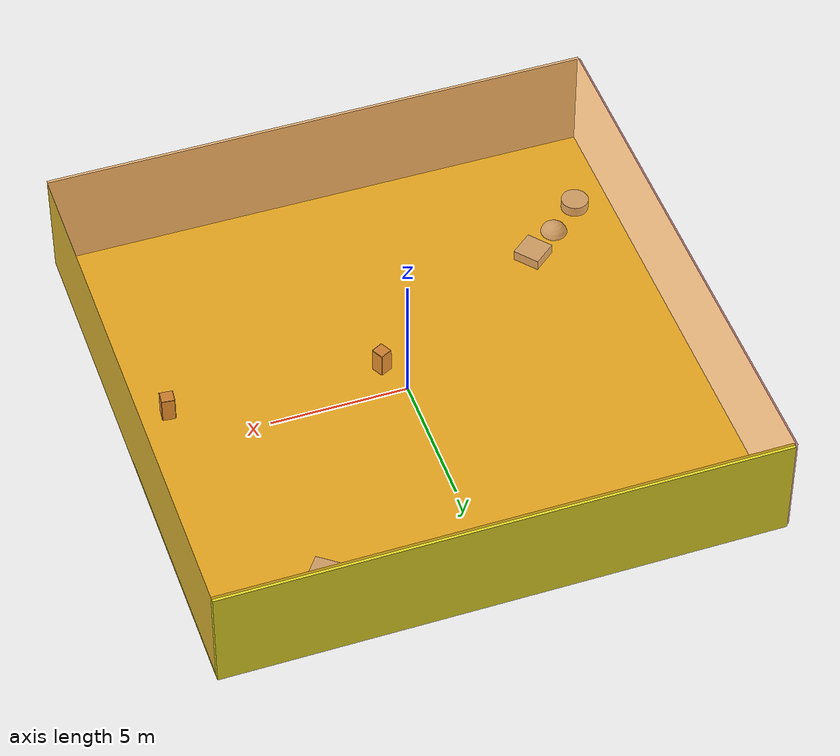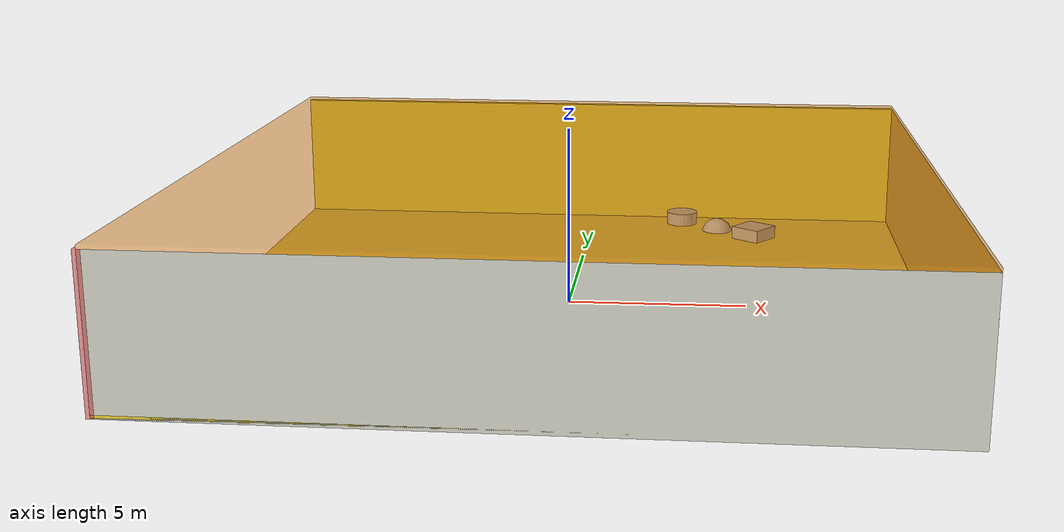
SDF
<sdf version="1.4">
 <world name="default">
  <physics type="ode">
   <max_step_size>0.001</max_step_size>
   <real_time_factor>1</real_time_factor>
   <real_time_update_rate>1000</real_time_update_rate>
   <gravity>0 0 -9.8</gravity>
  </physics>
  <scene><ambient>0.4 0.4 0.4 1</ambient><background>0.7 0.7 0.7 1</background><shadows>1</shadows></scene>
  <model name="Surrounding">
   <static>1</static>
   <link name="Ceiling">
    <collision name="Ceiling_Collision"><geometry><box><size>20 20 0.1</size></box></geometry></collision>
    <visual name="Ceiling_Visual">
     <geometry><box><size>20 20 0.1</size></box></geometry>
     <material>
      <script>
       <uri>file://media/materials/scripts/gazebo.material</uri>
       <name>Gazebo/OrangeTransparent</name>
      </script>
     </material>
    </visual>
    <pose>0 0 4.05 0 0 0</pose>
   </link>
   <link name="Wall_South">
    <collision name="Wall_South_Collision">
     <geometry><box><size>20 0 4</size></box></geometry>
     <pose>0 0 2 0 -0 0</pose>
    </collision>
    <visual name="Wall_South_Visual">
     <pose>0 0 2 0 -0 0</pose>
     <geometry><box><size>20 0 4</size></box></geometry>
     <material>
      <script><uri>file://media/materials/scripts/gazebo.material</uri><name>Gazebo/PaintedWall</name></script>
     </material>
    </visual>
    <velocity_decay><linear>0</linear><angular>0</angular></velocity_decay>
    <pose>0 -10 0 0 -0 0</pose>
   </link>
   <link name="Wall_East">
    <collision name="Wall_21_Collision">
     <geometry><box><size>20 0 4</size></box></geometry>
     <pose>0 0 2 0 -0 0</pose>
    </collision>
    <visual name="Wall_21_Visual">
     <pose>0 0 2 0 -0 0</pose>
     <geometry><box><size>20 0 4</size></box></geometry>
     <material>
      <script><uri>file://media/materials/scripts/gazebo.material</uri><name>Gazebo/Gold</name></script>
     </material>
    </visual>
    <velocity_decay><linear>0</linear><angular>0</angular></velocity_decay>
    <pose>10 0 0 0 -0 1.5708</pose>
   </link>
   <link name="Wall_North">
    <collision name="Wall_22_Collision">
     <geometry><box><size>20 0.2 4</size></box></geometry>
     <pose>0 0 2 0 -0 0</pose>
    </collision>
    <visual name="Wall_22_Visual">
     <pose>0 0 2 0 -0 0</pose>
     <geometry><box><size>20 0.2 4</size></box></geometry>
     <material>
      <script><uri>file://media/materials/scripts/gazebo.material</uri><name>Gazebo/Yellow</name></script>
     </material>
    </visual>
    <velocity_decay><linear>0</linear><angular>0</angular></velocity_decay>
    <pose>0 10 0 0 -0 0</pose>
   </link>
   <link name="Wall_West">
    <collision name="Wall_23_Collision">
     <geometry><box><size>20 0.2 4</size></box></geometry>
     <pose>0 0 2 0 -0 0</pose>
    </collision>
    <visual name="Wall_23_Visual">
     <pose>0 0 2 0 -0 0</pose>
     <geometry><box><size>20 0.2 4</size></box></geometry>
     <material>
      <script><uri>file://media/materials/scripts/gazebo.material</uri><name>Gazebo/RedTransparent</name></script>
     </material>
    </visual>
    <velocity_decay><linear>0</linear><angular>0</angular></velocity_decay>
    <pose>-10 0 0 0 0 -1.5708</pose>
   </link>
   <link name="Ground_link">
    <collision name="collision">
     <pose>0 0 .05 0 -0 0</pose>
     <geometry><box><size>20 20 0.1</size></box></geometry>
    </collision>
    <visual name="visual">
     <pose>0 0 .05 0 -0 0</pose>
     <geometry><box><size>20 20 0.1</size></box></geometry>
     <material>
      <script><uri>file://media/materials/scripts/gazebo.material</uri><name>Gazebo/ZincYellow</name></script>
     </material>
    </visual>
   </link>
   <static>1</static>
  </model>
  <spherical_coordinates>
   <surface_model>EARTH_WGS84</surface_model>
   <latitude_deg>0</latitude_deg>
   <longitude_deg>0</longitude_deg>
   <elevation>0</elevation>
   <heading_deg>0</heading_deg>
  </spherical_coordinates>
  <light name="lightball_0" type="diffuse">
   <diffuse>0.8 0.8 0.8 1</diffuse>
   <specular>0.2 0.2 0.2 1</specular>
   <attenuation>
    <range>100</range>
    <constant>0.7</constant>
    <linear>0.01</linear>
    <quadratic>0.001</quadratic>
   </attenuation>
   <direction>-0.5 0.1 -0.9</direction>
   <pose>6.18285842707 0.747661051911 1.96109346284 0 0 0</pose>
  </light>
  <light name="lightball_1" type="diffuse">
   <diffuse>0.8 0.8 0.8 1</diffuse>
   <specular>0.2 0.2 0.2 1</specular>
   <attenuation>
    <range>100</range>
    <constant>0.7</constant>
    <linear>0.01</linear>
    <quadratic>0.001</quadratic>
   </attenuation>
   <direction>-0.5 0.1 -0.9</direction>
   <pose>-4.92290631912 2.69647603822 2.08908324301 0 0 0</pose>
  </light>
  <light name="lightball_2" type="diffuse">
   <diffuse>0.8 0.8 0.8 1</diffuse>
   <specular>0.2 0.2 0.2 1</specular>
   <attenuation>
    <range>100</range>
    <constant>0.7</constant>
    <linear>0.01</linear>
    <quadratic>0.001</quadratic>
   </attenuation>
   <direction>-0.5 0.1 -0.9</direction>
   <pose>-6.97227480563 2.95389415852 2.07941031979 0 0 0</pose>
  </light>
  <light name="lightball_3" type="diffuse">
   <diffuse>0.8 0.8 0.8 1</diffuse>
   <specular>0.2 0.2 0.2 1</specular>
   <attenuation>
    <range>100</range>
    <constant>0.7</constant>
    <linear>0.01</linear>
    <quadratic>0.001</quadratic>
   </attenuation>
   <direction>-0.5 0.1 -0.9</direction>
   <pose>-4.57042069653 -6.23968720532 1.72353155323 0 0 0</pose>
  </light>
  <light name="lightball_4" type="diffuse">
   <diffuse>0.8 0.8 0.8 1</diffuse>
   <specular>0.2 0.2 0.2 1</specular>
   <attenuation>
    <range>100</range>
    <constant>0.7</constant>
    <linear>0.01</linear>
    <quadratic>0.001</quadratic>
   </attenuation>
   <direction>-0.5 0.1 -0.9</direction>
   <pose>0.167229083065 3.14461025159 1.17733235075 0 0 0</pose>
  </light>
  <include>
   <uri>model://textured_shapes</uri>
   <pose>-7.52654245516 -5.56146161086 0 0 0 2.25116725239</pose>
  </include>
  <include><uri>model://cabinet</uri><pose>0.56997615337 -1.14068841824 0 0 0 0.475202097365</pose></include>
  <include>
   <uri>model://textured_shapes</uri>
   <pose>4.22588588372 8.18420107639 0 0 0 0.91644219615</pose>
  </include>
  <include><uri>model://cabinet</uri><pose>8.25856419028 -1.49073964755 0 0 0 1.46572543796</pose></include>
 </world>
</sdf>

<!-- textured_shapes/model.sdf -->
<sdf version="1.6">
  <model name="textured_shapes">
    <pose>0 0 0.5 0 0 0</pose>
    <link name="box">
      <pose>0 -1.5 0 0 0 0</pose>
      <collision name="collision">
        <geometry>
          <box>
            <size>1 1 1</size>
          </box>
        </geometry>
      </collision>
      <visual name="visual">
        <geometry>
          <box>
            <size>1 1 1</size>
          </box>
        </geometry>
        <material>
          <script>
            <uri>model://../model_source/models/textured_shapes/materials/scripts</uri>
            <uri>model://../model_source/models/textured_shapes/materials/textures</uri>
            <name>TexturedShape/Squares</name>
          </script>
        </material>
      </visual>
    </link>
    <link name="sphere">
      <collision name="collision">
        <geometry>
          <sphere>
            <radius>0.5</radius>
          </sphere>
        </geometry>
      </collision>
      <visual name="visual">
        <geometry>
          <sphere>
            <radius>0.5</radius>
          </sphere>
        </geometry>
        <material>
          <script>
            <uri>model://../model_source/models/textured_shapes/materials/scripts</uri>
            <uri>model://../model_source/models/textured_shapes/materials/textures</uri>
            <name>TexturedShape/Squares</name>
          </script>
        </material>
      </visual>
    </link>
    <link name="cylinder">
      <pose>0 1.5 0 0 0 0</pose>
      <collision name="collision">
        <geometry>
          <cylinder>
            <radius>0.5</radius>
            <length>1</length>
          </cylinder>
        </geometry>
      </collision>
      <visual name="visual">
        <geometry>
          <cylinder>
            <radius>0.5</radius>
            <length>1</length>
          </cylinder>
        </geometry>
        <material>
          <script>
            <uri>model://../model_source/models/textured_shapes/materials/scripts</uri>
            <uri>model://../model_source/models/textured_shapes/materials/textures</uri>
            <name>TexturedShape/Squares</name>
          </script>
        </material>
      </visual>
    </link>
  </model>
</sdf>

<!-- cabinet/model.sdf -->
<sdf version="1.5">
  <model name="cabinet">
    <static>true</static>
    <link name="cabinet_bottom_plate">
      <inertial>
        <pose>0 0 -1 0 0 0</pose>
        <inertia>
          <ixx>2.050000</ixx>
          <ixy>0</ixy>
          <ixz>0</ixz>
          <iyy>2.050000</iyy>
          <iyz>0</iyz>
          <izz>2.050000</izz>
        </inertia>
        <mass>25.000000</mass>
      </inertial>
      <collision name="cabinet_bottom_plate_geom">
        <pose>0 0 0.010000 0 0 0</pose>
        <geometry>
          <box>
            <size>0.450000 0.450000 0.020000</size>
          </box>
        </geometry>
      </collision>
      <visual name="cabinet_bottom_plate_geom_visual">
        <pose>0 0 0.010000 0 0 0</pose>
        <geometry>
          <box>
            <size>0.450000 0.450000 0.020000</size>
          </box>
        </geometry>
        <material>
          <script>
            <uri>model://media/materials/scripts/gazebo.material</uri>
            <name>Gazebo/Wood</name>
          </script>
        </material>
      </visual>
      <collision name="cabinet_bottom_plate_geom_cabinet_back_plate">
        <pose>0.235000 0 0.510000 0 0 0</pose>
        <geometry>
          <box>
            <size>0.020000 0.450000 1.020000</size>
          </box>
        </geometry>
      </collision>
      <visual name="cabinet_bottom_plate_geom_cabinet_back_plate_visual">
        <pose>0.235000 0 0.510000 0 0 0</pose>
        <geometry>
          <box>
            <size>0.020000 0.450000 1.020000</size>
          </box>
        </geometry>
        <material>
          <script>
            <uri>model://media/materials/scripts/gazebo.material</uri>
            <name>Gazebo/Wood</name>
          </script>
        </material>
      </visual>
      <collision name="cabinet_bottom_plate_geom_cabinet_left_plate">
        <pose>0 0.235000 0.510000 0 0 0</pose>
        <geometry>
          <box>
            <size>0.450000 0.020000 1.020000</size>
          </box>
        </geometry>
      </collision>
      <visual name="cabinet_bottom_plate_geom_cabinet_left_plate_visual">
        <pose>0 0.235000 0.510000 0 0 0</pose>
        <geometry>
          <box>
            <size>0.450000 0.020000 1.020000</size>
          </box>
        </geometry>
        <material>
          <script>
            <uri>model://media/materials/scripts/gazebo.material</uri>
            <name>Gazebo/Wood</name>
          </script>
        </material>
      </visual>
      <collision name="cabinet_bottom_plate_geom_cabinet_middle_plate">
        <pose>0 0 0.510000 0 0 0</pose>
        <geometry>
          <box>
            <size>0.450000 0.450000 0.020000</size>
          </box>
        </geometry>
      </collision>
      <visual name="cabinet_bottom_plate_geom_cabinet_middle_plate_visual">
        <pose>0 0 0.510000 0 0 0</pose>
        <geometry>
          <box>
            <size>0.450000 0.450000 0.020000</size>
          </box>
        </geometry>
        <material>
          <script>
            <uri>model://media/materials/scripts/gazebo.material</uri>
            <name>Gazebo/Wood</name>
          </script>
        </material>
      </visual>
      <collision name="cabinet_bottom_plate_geom_cabinet_right_plate">
        <pose>0 -0.235000 0.510000 0 0 0</pose>
        <geometry>
          <box>
            <size>0.450000 0.020000 1.020000</size>
          </box>
        </geometry>
      </collision>
      <visual name="cabinet_bottom_plate_geom_cabinet_right_plate_visual">
        <pose>0 -0.235000 0.510000 0 0 0</pose>
        <geometry>
          <box>
            <size>0.450000 0.020000 1.020000</size>
          </box>
        </geometry>
        <material>
          <script>
            <uri>model://media/materials/scripts/gazebo.material</uri>
            <name>Gazebo/Wood</name>
          </script>
        </material>
      </visual>
      <collision name="cabinet_bottom_plate_geom_cabinet_top_plate">
        <pose>0 0 1.010000 0 0 0</pose>
        <geometry>
          <box>
            <size>0.450000 0.450000 0.020000</size>
          </box>
        </geometry>
      </collision>
      <visual name="cabinet_bottom_plate_geom_cabinet_top_plate_visual">
        <pose>0 0 1.010000 0 0 0</pose>
        <geometry>
          <box>
            <size>0.450000 0.450000 0.020000</size>
          </box>
        </geometry>
        <material>
          <script>
            <uri>model://media/materials/scripts/gazebo.material</uri>
            <name>Gazebo/Wood</name>
          </script>
        </material>
      </visual>
    </link>
  </model>
</sdf>
